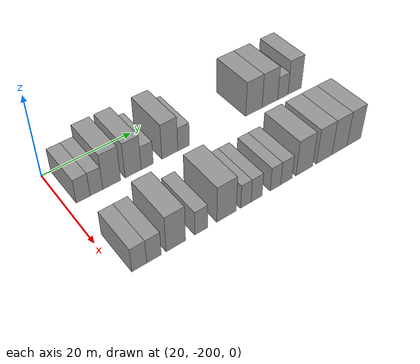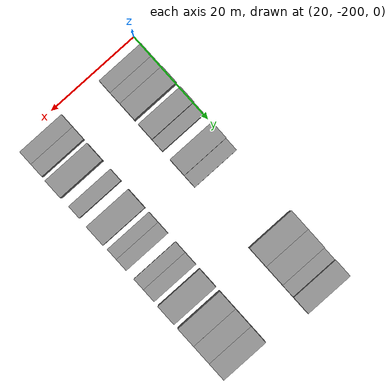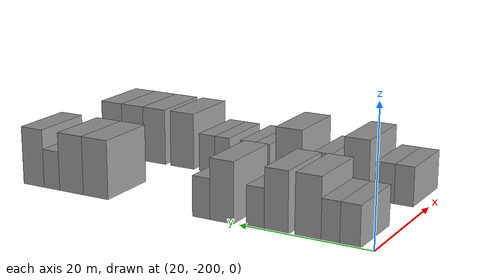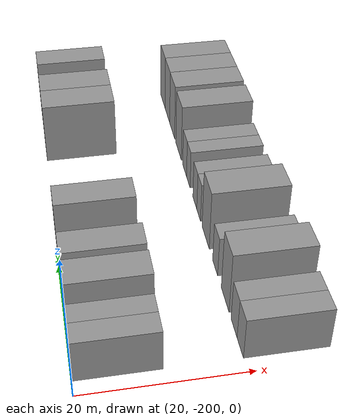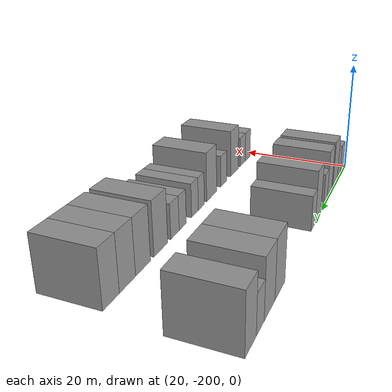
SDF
<sdf version="1.6">
 <world name="default">
  <model name="building_1">
   <static>1</static>
   <pose>25.0000 -196.5424 0 0.000000 0.000000 0.000000</pose>
   <link name="link">
    <pose>0 0 3.00 0 0 0</pose>
    <collision name="collision"><geometry><box><size>10.0000 2.9151 6.0000</size></box></geometry></collision>
    <visual name="visual">
     <cast_shadows>0</cast_shadows>
     <geometry><box><size>10.0000 2.9151 6.0000</size></box></geometry>
     <material>
      <script>
       <uri>model://grey_wall/materials/scripts</uri>
       <uri>model://grey_wall/materials/textures</uri>
       <name>vrc/grey_wall</name>
      </script>
     </material>
    </visual>
   </link>
  </model>
  <model name="building_2">
   <static>1</static>
   <pose>25.0000 -193.7213 0 0.000000 0.000000 0.000000</pose>
   <link name="link">
    <pose>0 0 3.00 0 0 0</pose>
    <collision name="collision"><geometry><box><size>10.0000 2.7271 6.0000</size></box></geometry></collision>
    <visual name="visual">
     <cast_shadows>0</cast_shadows>
     <geometry><box><size>10.0000 2.7271 6.0000</size></box></geometry>
     <material>
      <script>
       <uri>model://grey_wall/materials/scripts</uri>
       <uri>model://grey_wall/materials/textures</uri>
       <name>vrc/grey_wall</name>
      </script>
     </material>
    </visual>
   </link>
  </model>
  <model name="building_3">
   <static>1</static>
   <pose>25.0000 -190.4169 0 0.000000 0.000000 0.000000</pose>
   <link name="link">
    <pose>0 0 4.50 0 0 0</pose>
    <collision name="collision"><geometry><box><size>10.0000 3.8818 9.0000</size></box></geometry></collision>
    <visual name="visual">
     <cast_shadows>0</cast_shadows>
     <geometry><box><size>10.0000 3.8818 9.0000</size></box></geometry>
     <material>
      <script>
       <uri>model://grey_wall/materials/scripts</uri>
       <uri>model://grey_wall/materials/textures</uri>
       <name>vrc/grey_wall</name>
      </script>
     </material>
    </visual>
   </link>
  </model>
  <model name="building_4">
   <static>1</static>
   <pose>25.0000 -185.6511 0 0.000000 0.000000 0.000000</pose>
   <link name="link">
    <pose>0 0 4.50 0 0 0</pose>
    <collision name="collision"><geometry><box><size>10.0000 3.6497 9.0000</size></box></geometry></collision>
    <visual name="visual">
     <cast_shadows>0</cast_shadows>
     <geometry><box><size>10.0000 3.6497 9.0000</size></box></geometry>
     <material>
      <script>
       <uri>model://grey_wall/materials/scripts</uri>
       <uri>model://grey_wall/materials/textures</uri>
       <name>vrc/grey_wall</name>
      </script>
     </material>
    </visual>
   </link>
  </model>
  <model name="building_5">
   <static>1</static>
   <pose>25.0000 -182.4479 0 0.000000 0.000000 0.000000</pose>
   <link name="link">
    <pose>0 0 3.00 0 0 0</pose>
    <collision name="collision"><geometry><box><size>10.0000 2.7566 6.0000</size></box></geometry></collision>
    <visual name="visual">
     <cast_shadows>0</cast_shadows>
     <geometry><box><size>10.0000 2.7566 6.0000</size></box></geometry>
     <material>
      <script>
       <uri>model://grey_wall/materials/scripts</uri>
       <uri>model://grey_wall/materials/textures</uri>
       <name>vrc/grey_wall</name>
      </script>
     </material>
    </visual>
   </link>
  </model>
  <model name="building_6">
   <static>1</static>
   <pose>25.0000 -177.1667 0 0.000000 0.000000 0.000000</pose>
   <link name="link">
    <pose>0 0 4.50 0 0 0</pose>
    <collision name="collision"><geometry><box><size>10.0000 3.8058 9.0000</size></box></geometry></collision>
    <visual name="visual">
     <cast_shadows>0</cast_shadows>
     <geometry><box><size>10.0000 3.8058 9.0000</size></box></geometry>
     <material>
      <script>
       <uri>model://grey_wall/materials/scripts</uri>
       <uri>model://grey_wall/materials/textures</uri>
       <name>vrc/grey_wall</name>
      </script>
     </material>
    </visual>
   </link>
  </model>
  <model name="building_7">
   <static>1</static>
   <pose>25.0000 -173.8585 0 0.000000 0.000000 0.000000</pose>
   <link name="link">
    <pose>0 0 3.00 0 0 0</pose>
    <collision name="collision"><geometry><box><size>10.0000 2.8106 6.0000</size></box></geometry></collision>
    <visual name="visual">
     <cast_shadows>0</cast_shadows>
     <geometry><box><size>10.0000 2.8106 6.0000</size></box></geometry>
     <material>
      <script>
       <uri>model://grey_wall/materials/scripts</uri>
       <uri>model://grey_wall/materials/textures</uri>
       <name>vrc/grey_wall</name>
      </script>
     </material>
    </visual>
   </link>
  </model>
  <model name="building_8">
   <static>1</static>
   <pose>25.0000 -155.7688 0 0.000000 0.000000 0.000000</pose>
   <link name="link">
    <pose>0 0 4.50 0 0 0</pose>
    <collision name="collision"><geometry><box><size>10.0000 4.4563 9.0000</size></box></geometry></collision>
    <visual name="visual">
     <cast_shadows>0</cast_shadows>
     <geometry><box><size>10.0000 4.4563 9.0000</size></box></geometry>
     <material>
      <script>
       <uri>model://grey_wall/materials/scripts</uri>
       <uri>model://grey_wall/materials/textures</uri>
       <name>vrc/grey_wall</name>
      </script>
     </material>
    </visual>
   </link>
  </model>
  <model name="building_9">
   <static>1</static>
   <pose>25.0000 -151.3571 0 0.000000 0.000000 0.000000</pose>
   <link name="link">
    <pose>0 0 4.50 0 0 0</pose>
    <collision name="collision"><geometry><box><size>10.0000 4.3670 9.0000</size></box></geometry></collision>
    <visual name="visual">
     <cast_shadows>0</cast_shadows>
     <geometry><box><size>10.0000 4.3670 9.0000</size></box></geometry>
     <material>
      <script>
       <uri>model://grey_wall/materials/scripts</uri>
       <uri>model://grey_wall/materials/textures</uri>
       <name>vrc/grey_wall</name>
      </script>
     </material>
    </visual>
   </link>
  </model>
  <model name="building_10">
   <static>1</static>
   <pose>25.0000 -147.7145 0 0.000000 0.000000 0.000000</pose>
   <link name="link">
    <pose>0 0 3.00 0 0 0</pose>
    <collision name="collision"><geometry><box><size>10.0000 2.9183 6.0000</size></box></geometry></collision>
    <visual name="visual">
     <cast_shadows>0</cast_shadows>
     <geometry><box><size>10.0000 2.9183 6.0000</size></box></geometry>
     <material>
      <script>
       <uri>model://grey_wall/materials/scripts</uri>
       <uri>model://grey_wall/materials/textures</uri>
       <name>vrc/grey_wall</name>
      </script>
     </material>
    </visual>
   </link>
  </model>
  <model name="building_11">
   <static>1</static>
   <pose>25.0000 -144.3150 0 0.000000 0.000000 0.000000</pose>
   <link name="link">
    <pose>0 0 4.50 0 0 0</pose>
    <collision name="collision"><geometry><box><size>10.0000 3.8806 9.0000</size></box></geometry></collision>
    <visual name="visual">
     <cast_shadows>0</cast_shadows>
     <geometry><box><size>10.0000 3.8806 9.0000</size></box></geometry>
     <material>
      <script>
       <uri>model://grey_wall/materials/scripts</uri>
       <uri>model://grey_wall/materials/textures</uri>
       <name>vrc/grey_wall</name>
      </script>
     </material>
    </visual>
   </link>
  </model>
  <model name="building_95">
   <static>1</static>
   <pose>44.0000 -196.5131 0 0.000000 0.000000 0.000000</pose>
   <link name="link">
    <pose>0 0 3.00 0 0 0</pose>
    <collision name="collision"><geometry><box><size>10.0000 2.9738 6.0000</size></box></geometry></collision>
    <visual name="visual">
     <cast_shadows>0</cast_shadows>
     <geometry><box><size>10.0000 2.9738 6.0000</size></box></geometry>
     <material>
      <script>
       <uri>model://grey_wall/materials/scripts</uri>
       <uri>model://grey_wall/materials/textures</uri>
       <name>vrc/grey_wall</name>
      </script>
     </material>
    </visual>
   </link>
  </model>
  <model name="building_96">
   <static>1</static>
   <pose>44.0000 -193.5452 0 0.000000 0.000000 0.000000</pose>
   <link name="link">
    <pose>0 0 3.00 0 0 0</pose>
    <collision name="collision"><geometry><box><size>10.0000 2.9620 6.0000</size></box></geometry></collision>
    <visual name="visual">
     <cast_shadows>0</cast_shadows>
     <geometry><box><size>10.0000 2.9620 6.0000</size></box></geometry>
     <material>
      <script>
       <uri>model://grey_wall/materials/scripts</uri>
       <uri>model://grey_wall/materials/textures</uri>
       <name>vrc/grey_wall</name>
      </script>
     </material>
    </visual>
   </link>
  </model>
  <model name="building_97">
   <static>1</static>
   <pose>44.0000 -189.0156 0 0.000000 0.000000 0.000000</pose>
   <link name="link">
    <pose>0 0 4.50 0 0 0</pose>
    <collision name="collision"><geometry><box><size>10.0000 4.0971 9.0000</size></box></geometry></collision>
    <visual name="visual">
     <cast_shadows>0</cast_shadows>
     <geometry><box><size>10.0000 4.0971 9.0000</size></box></geometry>
     <material>
      <script>
       <uri>model://grey_wall/materials/scripts</uri>
       <uri>model://grey_wall/materials/textures</uri>
       <name>vrc/grey_wall</name>
      </script>
     </material>
    </visual>
   </link>
  </model>
  <model name="building_98">
   <static>1</static>
   <pose>44.0000 -183.5413 0 0.000000 0.000000 0.000000</pose>
   <link name="link">
    <pose>0 0 3.00 0 0 0</pose>
    <collision name="collision"><geometry><box><size>10.0000 2.8515 6.0000</size></box></geometry></collision>
    <visual name="visual">
     <cast_shadows>0</cast_shadows>
     <geometry><box><size>10.0000 2.8515 6.0000</size></box></geometry>
     <material>
      <script>
       <uri>model://grey_wall/materials/scripts</uri>
       <uri>model://grey_wall/materials/textures</uri>
       <name>vrc/grey_wall</name>
      </script>
     </material>
    </visual>
   </link>
  </model>
  <model name="building_99">
   <static>1</static>
   <pose>44.0000 -177.8961 0 0.000000 0.000000 0.000000</pose>
   <link name="link">
    <pose>0 0 4.50 0 0 0</pose>
    <collision name="collision"><geometry><box><size>10.0000 4.4389 9.0000</size></box></geometry></collision>
    <visual name="visual">
     <cast_shadows>0</cast_shadows>
     <geometry><box><size>10.0000 4.4389 9.0000</size></box></geometry>
     <material>
      <script>
       <uri>model://grey_wall/materials/scripts</uri>
       <uri>model://grey_wall/materials/textures</uri>
       <name>vrc/grey_wall</name>
      </script>
     </material>
    </visual>
   </link>
  </model>
  <model name="building_100">
   <static>1</static>
   <pose>44.0000 -173.4527 0 0.000000 0.000000 0.000000</pose>
   <link name="link">
    <pose>0 0 3.00 0 0 0</pose>
    <collision name="collision"><geometry><box><size>10.0000 2.4479 6.0000</size></box></geometry></collision>
    <visual name="visual">
     <cast_shadows>0</cast_shadows>
     <geometry><box><size>10.0000 2.4479 6.0000</size></box></geometry>
     <material>
      <script>
       <uri>model://grey_wall/materials/scripts</uri>
       <uri>model://grey_wall/materials/textures</uri>
       <name>vrc/grey_wall</name>
      </script>
     </material>
    </visual>
   </link>
  </model>
  <model name="building_101">
   <static>1</static>
   <pose>44.0000 -170.8989 0 0.000000 0.000000 0.000000</pose>
   <link name="link">
    <pose>0 0 3.00 0 0 0</pose>
    <collision name="collision"><geometry><box><size>10.0000 2.6598 6.0000</size></box></geometry></collision>
    <visual name="visual">
     <cast_shadows>0</cast_shadows>
     <geometry><box><size>10.0000 2.6598 6.0000</size></box></geometry>
     <material>
      <script>
       <uri>model://grey_wall/materials/scripts</uri>
       <uri>model://grey_wall/materials/textures</uri>
       <name>vrc/grey_wall</name>
      </script>
     </material>
    </visual>
   </link>
  </model>
  <model name="building_102">
   <static>1</static>
   <pose>44.0000 -166.2875 0 0.000000 0.000000 0.000000</pose>
   <link name="link">
    <pose>0 0 3.00 0 0 0</pose>
    <collision name="collision"><geometry><box><size>10.0000 2.5629 6.0000</size></box></geometry></collision>
    <visual name="visual">
     <cast_shadows>0</cast_shadows>
     <geometry><box><size>10.0000 2.5629 6.0000</size></box></geometry>
     <material>
      <script>
       <uri>model://grey_wall/materials/scripts</uri>
       <uri>model://grey_wall/materials/textures</uri>
       <name>vrc/grey_wall</name>
      </script>
     </material>
    </visual>
   </link>
  </model>
  <model name="building_103">
   <static>1</static>
   <pose>44.0000 -163.5679 0 0.000000 0.000000 0.000000</pose>
   <link name="link">
    <pose>0 0 3.00 0 0 0</pose>
    <collision name="collision"><geometry><box><size>10.0000 2.8762 6.0000</size></box></geometry></collision>
    <visual name="visual">
     <cast_shadows>0</cast_shadows>
     <geometry><box><size>10.0000 2.8762 6.0000</size></box></geometry>
     <material>
      <script>
       <uri>model://grey_wall/materials/scripts</uri>
       <uri>model://grey_wall/materials/textures</uri>
       <name>vrc/grey_wall</name>
      </script>
     </material>
    </visual>
   </link>
  </model>
  <model name="building_104">
   <static>1</static>
   <pose>44.0000 -158.9699 0 0.000000 0.000000 0.000000</pose>
   <link name="link">
    <pose>0 0 4.50 0 0 0</pose>
    <collision name="collision"><geometry><box><size>10.0000 4.3199 9.0000</size></box></geometry></collision>
    <visual name="visual">
     <cast_shadows>0</cast_shadows>
     <geometry><box><size>10.0000 4.3199 9.0000</size></box></geometry>
     <material>
      <script>
       <uri>model://grey_wall/materials/scripts</uri>
       <uri>model://grey_wall/materials/textures</uri>
       <name>vrc/grey_wall</name>
      </script>
     </material>
    </visual>
   </link>
  </model>
  <model name="building_105">
   <static>1</static>
   <pose>44.0000 -153.7224 0 0.000000 0.000000 0.000000</pose>
   <link name="link">
    <pose>0 0 4.50 0 0 0</pose>
    <collision name="collision"><geometry><box><size>10.0000 4.1751 9.0000</size></box></geometry></collision>
    <visual name="visual">
     <cast_shadows>0</cast_shadows>
     <geometry><box><size>10.0000 4.1751 9.0000</size></box></geometry>
     <material>
      <script>
       <uri>model://grey_wall/materials/scripts</uri>
       <uri>model://grey_wall/materials/textures</uri>
       <name>vrc/grey_wall</name>
      </script>
     </material>
    </visual>
   </link>
  </model>
  <model name="building_106">
   <static>1</static>
   <pose>44.0000 -149.5695 0 0.000000 0.000000 0.000000</pose>
   <link name="link">
    <pose>0 0 4.50 0 0 0</pose>
    <collision name="collision"><geometry><box><size>10.0000 4.1305 9.0000</size></box></geometry></collision>
    <visual name="visual">
     <cast_shadows>0</cast_shadows>
     <geometry><box><size>10.0000 4.1305 9.0000</size></box></geometry>
     <material>
      <script>
       <uri>model://grey_wall/materials/scripts</uri>
       <uri>model://grey_wall/materials/textures</uri>
       <name>vrc/grey_wall</name>
      </script>
     </material>
    </visual>
   </link>
  </model>
  <model name="building_107">
   <static>1</static>
   <pose>44.0000 -145.5526 0 0.000000 0.000000 0.000000</pose>
   <link name="link">
    <pose>0 0 4.50 0 0 0</pose>
    <collision name="collision"><geometry><box><size>10.0000 3.9034 9.0000</size></box></geometry></collision>
    <visual name="visual">
     <cast_shadows>0</cast_shadows>
     <geometry><box><size>10.0000 3.9034 9.0000</size></box></geometry>
     <material>
      <script>
       <uri>model://grey_wall/materials/scripts</uri>
       <uri>model://grey_wall/materials/textures</uri>
       <name>vrc/grey_wall</name>
      </script>
     </material>
    </visual>
   </link>
  </model>
 </world>
</sdf>
